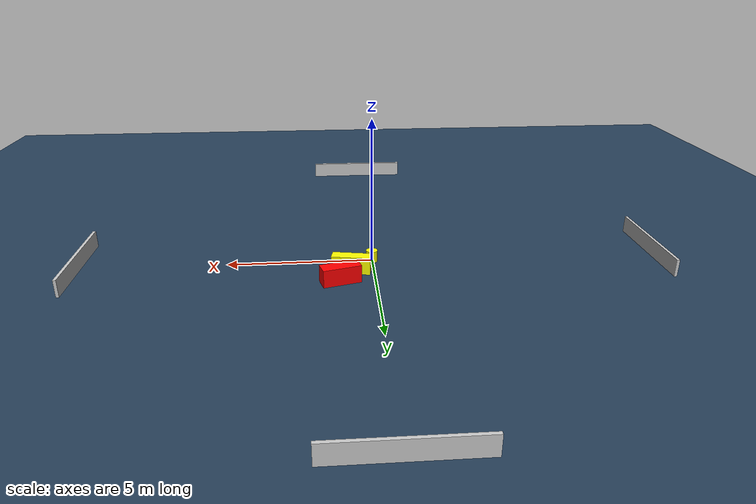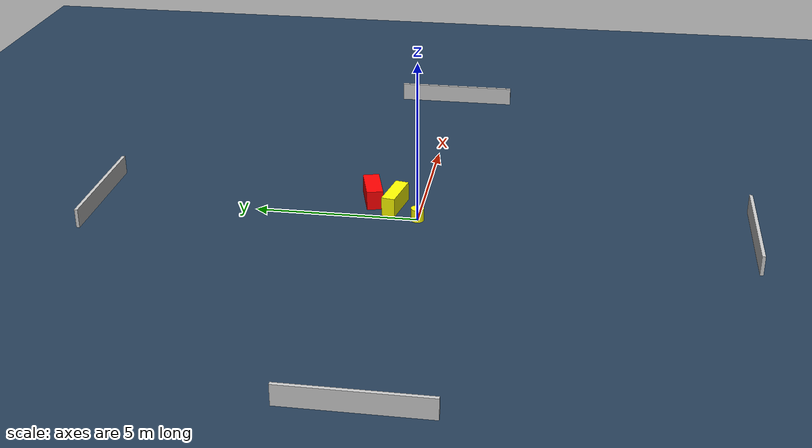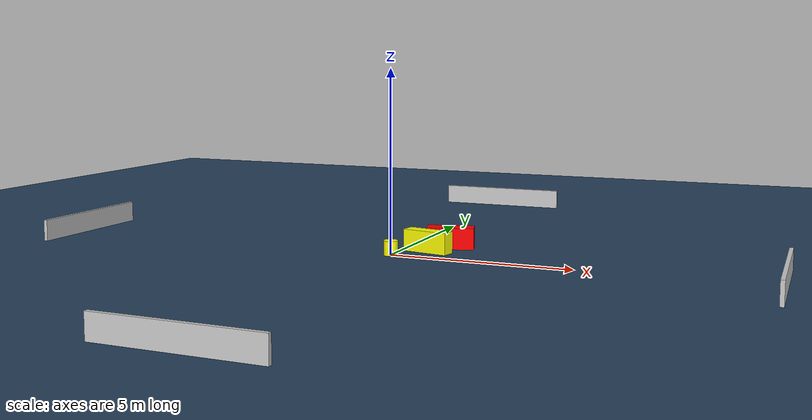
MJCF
<?xml version="1.0" ?>
<mujoco model="generated_environment">
  <option timestep="0.01" integrator="RK4" cone="elliptic"/>
  <default>
    <geom density="1"/>
  </default>
  <asset>
    <texture builtin="gradient" height="3072" name="skybox" rgb1="0.3 0.5 0.7" rgb2="0 0 0" type="skybox" width="512"/>
    <texture builtin="checker" height="300" name="groundplane" rgb1="0.2 0.3 0.4" rgb2="0.1 0.2 0.3" type="2d" width="300"/>
    <material name="groundplane" reflectance="0.2" texrepeat="5 5" texture="groundplane"/>
  </asset>
  <worldbody>
    <light dir="0 0 -1" directional="true" pos="0 0 1.5"/>
    <geom condim="3" friction="0.5 0.005 0.001" material="groundplane" name="floor" pos="0 0 0" size="0 0 0.05" type="plane"/>
    <body name="walls">
      <geom name="wall_1" condim="4" pos="-10.0 0.0 0.3" rgba="0.800000011920929 0.800000011920929 0.800000011920929 1.0" size="0.05 2.0 0.3" type="box"/>
      <geom name="wall_2" condim="4" pos="10.0 0.0 0.3" rgba="0.800000011920929 0.800000011920929 0.800000011920929 1.0" size="0.05 2.0 0.3" type="box"/>
      <geom name="wall_3" condim="4" pos="0.0 -10.0 0.3" rgba="0.800000011920929 0.800000011920929 0.800000011920929 1.0" size="2.0 0.05 0.3" type="box"/>
      <geom name="wall_4" condim="4" pos="0.0 10.0 0.3" rgba="0.800000011920929 0.800000011920929 0.800000011920929 1.0" size="2.0 0.05 0.3" type="box"/>
    </body>
    <body name="robot">
      <joint name="joint_x" type="slide" pos="0 0 0" axis="1 0 0"/>
      <joint name="joint_y" type="slide" pos="0 0 0" axis="0 1 0"/>
      <geom name="robot" type="cylinder" pos="0.0 0.0 0.2" size="0.2 0.2 0.0" mass="5.0" friction="1.0 0.005 0.0001" condim="4" rgba="1.0 1.0 0.0 1.0"/>
    </body>
    <body name="obstacle_1_movable">
      <geom name="obstacle_1_movable" condim="4" pos="0.7551771105027721 0.8065742723193403 0.3" euler="0 0 79.34587387466908" friction="0.0 0.005 0.001" rgba="1.0 1.0 0.0 1.0" size="0.20791659276085372 0.6560851401947752 0.3" type="box" mass="0.1"/>
      <joint type="free"/>
    </body>
    <body name="obstacle_2_static">
      <geom name="obstacle_2_static" condim="4" pos="1.1410891819237063 1.5716954310795983 0.3" euler="0 0 105.78093527697848" friction="0.0 0.005 0.001" rgba="1.0 0.0 0.0 1.0" size="0.25427661239366434 0.6502808851811854 0.3" type="box"/>
    </body>
  </worldbody>
  <actuator>
    <motor name="actuator_x" joint="joint_x" gear="1" ctrlrange="-1 1"/>
    <motor name="actuator_y" joint="joint_y" gear="1" ctrlrange="-1 1"/>
  </actuator>
</mujoco>
